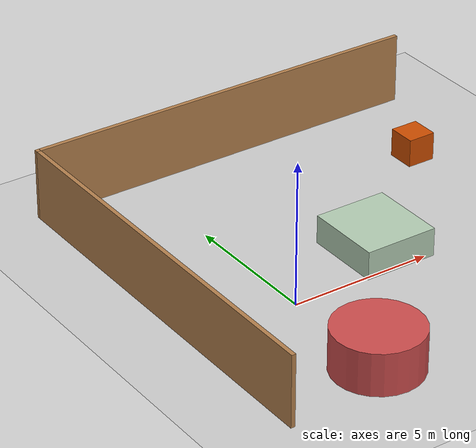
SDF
<sdf version="1.7">
 <world name="default">
  <light name="sun" type="directional">
   <pose>0 0 10 0 -0 0</pose>
   <diffuse>0.8 0.8 0.8 1</diffuse>
   <specular>0.2 0.2 0.2 1</specular>
   <attenuation>
    <range>1000</range>
    <constant>0.9</constant>
    <linear>0.01</linear>
    <quadratic>0.001</quadratic>
   </attenuation>
   <direction>-0.5 0.1 -0.9</direction>
   <spot><inner_angle>0</inner_angle><outer_angle>0</outer_angle><falloff>0</falloff></spot>
  </light>
  <model name="ground_plane">
   <static>1</static>
   <link name="link">
    <collision name="collision">
     <geometry><plane><normal>0 0 1</normal><size>100 100</size></plane></geometry>
     <surface><friction><ode><mu>100</mu><mu2>50</mu2></ode></friction></surface>
    </collision>
    <visual name="visual">
     <cast_shadows>0</cast_shadows>
     <geometry><plane><normal>0 0 1</normal><size>100 100</size></plane></geometry>
     <material>
      <script><uri>file://media/materials/scripts/gazebo.material</uri><name>Gazebo/Grey</name></script>
     </material>
    </visual>
   </link>
  </model>
  <gravity>0 0 -9.8</gravity>
  <magnetic_field>6e-06 2.3e-05 -4.2e-05</magnetic_field>
  <atmosphere type="adiabatic"/>
  <physics type="ode">
   <max_step_size>0.001</max_step_size>
   <real_time_factor>1</real_time_factor>
   <real_time_update_rate>1000</real_time_update_rate>
  </physics>
  <scene><ambient>0.4 0.4 0.4 1</ambient><background>0.7 0.7 0.7 1</background><shadows>1</shadows></scene>
  <audio><device>default</device></audio>
  <spherical_coordinates>
   <surface_model>EARTH_WGS84</surface_model>
   <latitude_deg>0</latitude_deg>
   <longitude_deg>0</longitude_deg>
   <elevation>0</elevation>
   <heading_deg>0</heading_deg>
  </spherical_coordinates>
  <model name="Env">
   <link name="Wall_0">
    <pose>-7.18995 0 0 0 -0 1.56753</pose>
    <visual name="Wall_0_Visual">
     <pose>0 0 1.25 0 -0 0</pose>
     <geometry><box><size>14.2073 0.15 2.5</size></box></geometry>
     <material>
      <script><uri>file://media/materials/scripts/gazebo.material</uri><name>Gazebo/Wood</name></script>
      <ambient>1 1 1 1</ambient>
      <shader type="pixel"/>
     </material>
     <meta><layer>0</layer></meta>
    </visual>
    <collision name="Wall_0_Collision">
     <pose>0 0 1.25 0 -0 0</pose>
     <geometry><box><size>14.2073 0.15 2.5</size></box></geometry>
     <surface>
      <friction>
       <ode><mu>1</mu><mu2>1</mu2><fdir1>0 0 0</fdir1><slip1>0</slip1><slip2>0</slip2></ode>
       <torsional>
        <coefficient>1</coefficient>
        <patch_radius>0</patch_radius>
        <surface_radius>0</surface_radius>
        <use_patch_radius>1</use_patch_radius>
        <ode><slip>0</slip></ode>
       </torsional>
      </friction>
      <bounce><restitution_coefficient>0</restitution_coefficient><threshold>1e+06</threshold></bounce>
      <contact>
       <collide_without_contact>0</collide_without_contact>
       <collide_without_contact_bitmask>1</collide_without_contact_bitmask>
       <collide_bitmask>1</collide_bitmask>
       <ode>
        <soft_cfm>0</soft_cfm>
        <soft_erp>0.2</soft_erp>
        <kp>1e+13</kp>
        <kd>1</kd>
        <max_vel>0.01</max_vel>
        <min_depth>0</min_depth>
       </ode>
       <bullet>
        <split_impulse>1</split_impulse>
        <split_impulse_penetration_threshold>-0.01</split_impulse_penetration_threshold>
        <soft_cfm>0</soft_cfm>
        <soft_erp>0.2</soft_erp>
        <kp>1e+13</kp>
        <kd>1</kd>
       </bullet>
      </contact>
     </surface>
    </collision>
   </link>
   <link name="Wall_2">
    <pose>0.023025 7.02868 0 0 -0 0</pose>
    <visual name="Wall_2_Visual">
     <pose>0 0 1.25 0 -0 0</pose>
     <geometry><box><size>14.5303 0.15 2.5</size></box></geometry>
     <material>
      <script><uri>file://media/materials/scripts/gazebo.material</uri><name>Gazebo/Wood</name></script>
      <ambient>1 1 1 1</ambient>
      <shader type="pixel"/>
     </material>
     <meta><layer>0</layer></meta>
    </visual>
    <collision name="Wall_2_Collision">
     <pose>0 0 1.25 0 -0 0</pose>
     <geometry><box><size>14.5303 0.15 2.5</size></box></geometry>
     <surface>
      <friction>
       <ode><mu>1</mu><mu2>1</mu2><fdir1>0 0 0</fdir1><slip1>0</slip1><slip2>0</slip2></ode>
       <torsional>
        <coefficient>1</coefficient>
        <patch_radius>0</patch_radius>
        <surface_radius>0</surface_radius>
        <use_patch_radius>1</use_patch_radius>
        <ode><slip>0</slip></ode>
       </torsional>
      </friction>
      <bounce><restitution_coefficient>0</restitution_coefficient><threshold>1e+06</threshold></bounce>
      <contact>
       <collide_without_contact>0</collide_without_contact>
       <collide_without_contact_bitmask>1</collide_without_contact_bitmask>
       <collide_bitmask>1</collide_bitmask>
       <ode>
        <soft_cfm>0</soft_cfm>
        <soft_erp>0.2</soft_erp>
        <kp>1e+13</kp>
        <kd>1</kd>
        <max_vel>0.01</max_vel>
        <min_depth>0</min_depth>
       </ode>
       <bullet>
        <split_impulse>1</split_impulse>
        <split_impulse_penetration_threshold>-0.01</split_impulse_penetration_threshold>
        <soft_cfm>0</soft_cfm>
        <soft_erp>0.2</soft_erp>
        <kp>1e+13</kp>
        <kd>1</kd>
       </bullet>
      </contact>
     </surface>
    </collision>
   </link>
   <link name="link_0">
    <inertial>
     <mass>1</mass>
     <inertia>
      <ixx>0.166667</ixx>
      <ixy>0</ixy>
      <ixz>0</ixz>
      <iyy>0.166667</iyy>
      <iyz>0</iyz>
      <izz>0.166667</izz>
     </inertia>
    </inertial>
    <pose>5.24404 3.34916 0.5 0 -0 0</pose>
    <visual name="visual">
     <geometry><box><size>1 1 1</size></box></geometry>
     <material>
      <lighting>1</lighting>
      <script><uri>file://media/materials/scripts/gazebo.material</uri><name>Gazebo/Grey</name></script>
      <shader type="pixel"><normal_map>__default__</normal_map></shader>
      <ambient>0.8 0.3 0 0</ambient>
      <diffuse>0.7 0.7 0.7 1</diffuse>
      <specular>0.01 0.01 0.01 1</specular>
      <emissive>0 0 0 1</emissive>
     </material>
    </visual>
    <collision name="collision">
     <geometry><box><size>1 1 1</size></box></geometry>
     <surface>
      <friction>
       <ode><mu>1</mu><mu2>1</mu2><fdir1>0 0 0</fdir1><slip1>0</slip1><slip2>0</slip2></ode>
       <torsional>
        <coefficient>1</coefficient>
        <patch_radius>0</patch_radius>
        <surface_radius>0</surface_radius>
        <use_patch_radius>1</use_patch_radius>
        <ode><slip>0</slip></ode>
       </torsional>
      </friction>
      <bounce><restitution_coefficient>0</restitution_coefficient><threshold>1e+06</threshold></bounce>
      <contact>
       <collide_without_contact>0</collide_without_contact>
       <collide_without_contact_bitmask>1</collide_without_contact_bitmask>
       <collide_bitmask>1</collide_bitmask>
       <ode>
        <soft_cfm>0</soft_cfm>
        <soft_erp>0.2</soft_erp>
        <kp>1e+13</kp>
        <kd>1</kd>
        <max_vel>0.01</max_vel>
        <min_depth>0</min_depth>
       </ode>
       <bullet>
        <split_impulse>1</split_impulse>
        <split_impulse_penetration_threshold>-0.01</split_impulse_penetration_threshold>
        <soft_cfm>0</soft_cfm>
        <soft_erp>0.2</soft_erp>
        <kp>1e+13</kp>
        <kd>1</kd>
       </bullet>
      </contact>
     </surface>
    </collision>
   </link>
   <link name="link_1">
    <inertial>
     <mass>7.07258</mass>
     <inertia><ixx>4.97638</ixx><ixy>0</ixy><ixz>0</ixz><iyy>4.55015</iyy><iyz>0</iyz><izz>8.34777</izz></inertia>
    </inertial>
    <pose>0.589956 -0.688854 0.5 0 -0 0</pose>
    <visual name="visual">
     <geometry><box><size>2.59234 2.72826 1</size></box></geometry>
     <material>
      <lighting>1</lighting>
      <script><uri>file://media/materials/scripts/gazebo.material</uri><name>Gazebo/Grey</name></script>
      <shader type="pixel"><normal_map>__default__</normal_map></shader>
      <ambient>0.3 0.7 0 0</ambient>
      <diffuse>0.7 0.8 0.7 1</diffuse>
      <specular>0.01 0.01 0.01 1</specular>
      <emissive>0 0 0 1</emissive>
     </material>
    </visual>
    <collision name="collision">
     <geometry><box><size>2.59234 2.72826 1</size></box></geometry>
     <surface>
      <friction>
       <ode><mu>1</mu><mu2>1</mu2><fdir1>0 0 0</fdir1><slip1>0</slip1><slip2>0</slip2></ode>
       <torsional>
        <coefficient>1</coefficient>
        <patch_radius>0</patch_radius>
        <surface_radius>0</surface_radius>
        <use_patch_radius>1</use_patch_radius>
        <ode><slip>0</slip></ode>
       </torsional>
      </friction>
      <bounce><restitution_coefficient>0</restitution_coefficient><threshold>1e+06</threshold></bounce>
      <contact>
       <collide_without_contact>0</collide_without_contact>
       <collide_without_contact_bitmask>1</collide_without_contact_bitmask>
       <collide_bitmask>1</collide_bitmask>
       <ode>
        <soft_cfm>0</soft_cfm>
        <soft_erp>0.2</soft_erp>
        <kp>1e+13</kp>
        <kd>1</kd>
        <max_vel>0.01</max_vel>
        <min_depth>0</min_depth>
       </ode>
       <bullet>
        <split_impulse>1</split_impulse>
        <split_impulse_penetration_threshold>-0.01</split_impulse_penetration_threshold>
        <soft_cfm>0</soft_cfm>
        <soft_erp>0.2</soft_erp>
        <kp>1e+13</kp>
        <kd>1</kd>
       </bullet>
      </contact>
     </surface>
    </collision>
   </link>
   <link name="link_2">
    <inertial>
     <mass>17.3799</mass>
     <inertia><ixx>15.177</ixx><ixy>0</ixy><ixz>0</ixz><iyy>15.177</iyy><iyz>0</iyz><izz>19.5597</izz></inertia>
    </inertial>
    <pose>-3.39506 -6.0497 0.5 0 -0 0</pose>
    <visual name="visual">
     <geometry><cylinder><radius>1.50028</radius><length>1.93041</length></cylinder></geometry>
     <material>
      <lighting>1</lighting>
      <script><uri>file://media/materials/scripts/gazebo.material</uri><name>Gazebo/Grey</name></script>
      <shader type="pixel"><normal_map>__default__</normal_map></shader>
      <ambient>0.8 0.3 0.3 1</ambient>
      <diffuse>0.7 0.7 0.7 1</diffuse>
      <specular>0.01 0.01 0.01 1</specular>
      <emissive>0 0 0 1</emissive>
     </material>
    </visual>
    <collision name="collision">
     <geometry><cylinder><radius>1.50028</radius><length>1.93041</length></cylinder></geometry>
     <surface>
      <friction>
       <ode><mu>1</mu><mu2>1</mu2><fdir1>0 0 0</fdir1><slip1>0</slip1><slip2>0</slip2></ode>
       <torsional>
        <coefficient>1</coefficient>
        <patch_radius>0</patch_radius>
        <surface_radius>0</surface_radius>
        <use_patch_radius>1</use_patch_radius>
        <ode><slip>0</slip></ode>
       </torsional>
      </friction>
      <bounce><restitution_coefficient>0</restitution_coefficient><threshold>1e+06</threshold></bounce>
      <contact>
       <collide_without_contact>0</collide_without_contact>
       <collide_without_contact_bitmask>1</collide_without_contact_bitmask>
       <collide_bitmask>1</collide_bitmask>
       <ode>
        <soft_cfm>0</soft_cfm>
        <soft_erp>0.2</soft_erp>
        <kp>1e+13</kp>
        <kd>1</kd>
        <max_vel>0.01</max_vel>
        <min_depth>0</min_depth>
       </ode>
       <bullet>
        <split_impulse>1</split_impulse>
        <split_impulse_penetration_threshold>-0.01</split_impulse_penetration_threshold>
        <soft_cfm>0</soft_cfm>
        <soft_erp>0.2</soft_erp>
        <kp>1e+13</kp>
        <kd>1</kd>
       </bullet>
      </contact>
     </surface>
    </collision>
   </link>
   <static>1</static>
   <pose>3.39798 1.94132 0 0 -0 0</pose>
  </model>
 </world>
</sdf>
